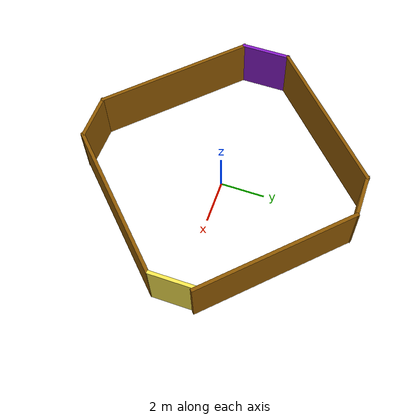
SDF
<?xml version='1.0'?>
<sdf version='1.7'>
  <model name='Arena'>
    <pose>0.041118 0.057895 0 0 -0 0</pose>
    <link name='Wall_0'>
      <collision name='Wall_0_Collision'>
        <geometry>
          <box>
            <size>2.26 0.15 2.5</size>
          </box>
        </geometry>
        <pose>0 0 1.25 0 -0 0</pose>
      </collision>
      <visual name='Wall_0_Visual'>
        <pose>0 0 1.25 0 -0 0</pose>
        <geometry>
          <box>
            <size>2.26 0.15 2.5</size>
          </box>
        </geometry>
        <material>
          <script>
            <uri>file://media/materials/scripts/gazebo.material</uri>
            <name>Gazebo/Grey</name>
          </script>
          <ambient>0.533333 0.109804 0.792157 1</ambient>
        </material>
        <meta>
          <layer>0</layer>
        </meta>
      </visual>
      <pose>-6.08112 0.057105 0 0 -0 1.5708</pose>
    </link>
    <link name='Wall_10'>
      <collision name='Wall_10_Collision'>
        <geometry>
          <box>
            <size>2 0.15 2.5</size>
          </box>
        </geometry>
        <pose>0 0 1.25 0 -0 0</pose>
      </collision>
      <visual name='Wall_10_Visual'>
        <pose>0 0 1.25 0 -0 0</pose>
        <geometry>
          <box>
            <size>2 0.15 2.5</size>
          </box>
        </geometry>
        <material>
          <script>
            <uri>file://media/materials/scripts/gazebo.material</uri>
            <name>Gazebo/Grey</name>
          </script>
          <ambient>0.988235 0.913725 0.309804 1</ambient>
        </material>
        <meta>
          <layer>0</layer>
        </meta>
      </visual>
      <pose>5.95354 -0.054343 0 0 -0 -1.5708</pose>
    </link>
    <link name='Wall_12'>
      <collision name='Wall_12_Collision'>
        <geometry>
          <box>
            <size>7.5 0.15 2.5</size>
          </box>
        </geometry>
        <pose>0 0 1.25 0 -0 0</pose>
      </collision>
      <visual name='Wall_12_Visual'>
        <pose>0 0 1.25 0 -0 0</pose>
        <geometry>
          <box>
            <size>7.5 0.15 2.5</size>
          </box>
        </geometry>
        <material>
          <script>
            <uri>file://media/materials/scripts/gazebo.material</uri>
            <name>Gazebo/Grey</name>
          </script>
          <ambient>0.560784 0.34902 0.00784314 1</ambient>
        </material>
        <meta>
          <layer>0</layer>
        </meta>
      </visual>
      <pose>3.4825 3.47549 0 0 -0 -0.785398</pose>
    </link>
    <link name='Wall_14'>
      <collision name='Wall_14_Collision'>
        <geometry>
          <box>
            <size>7.25 0.15 2.5</size>
          </box>
        </geometry>
        <pose>0 0 1.25 0 -0 0</pose>
      </collision>
      <visual name='Wall_14_Visual'>
        <pose>0 0 1.25 0 -0 0</pose>
        <geometry>
          <box>
            <size>7.25 0.15 2.5</size>
          </box>
        </geometry>
        <material>
          <script>
            <uri>file://media/materials/scripts/gazebo.material</uri>
            <name>Gazebo/Grey</name>
          </script>
          <ambient>0.560784 0.34902 0.00784314 1</ambient>
        </material>
        <meta>
          <layer>0</layer>
        </meta>
      </visual>
      <pose>3.43107 -3.56388 0 0 -0 0.785398</pose>
    </link>
    <link name='Wall_2'>
      <collision name='Wall_2_Collision'>
        <geometry>
          <box>
            <size>7.23587 0.15 2.5</size>
          </box>
        </geometry>
        <pose>0 0 1.25 0 -0 0</pose>
      </collision>
      <visual name='Wall_2_Visual'>
        <pose>0 0 1.25 0 -0 0</pose>
        <geometry>
          <box>
            <size>7.23587 0.15 2.5</size>
          </box>
        </geometry>
        <material>
          <script>
            <uri>file://media/materials/scripts/gazebo.material</uri>
            <name>Gazebo/Grey</name>
          </script>
          <ambient>0.560784 0.34902 0.00784314 1</ambient>
        </material>
        <meta>
          <layer>0</layer>
        </meta>
      </visual>
      <pose>-3.57089 -3.49812 0 0 -0 -0.783402</pose>
    </link>
    <link name='Wall_4'>
      <collision name='Wall_4_Collision'>
        <geometry>
          <box>
            <size>2.14504 0.15 2.5</size>
          </box>
        </geometry>
        <pose>0 0 1.25 0 -0 0</pose>
      </collision>
      <visual name='Wall_4_Visual'>
        <pose>0 0 1.25 0 -0 0</pose>
        <geometry>
          <box>
            <size>2.14504 0.15 2.5</size>
          </box>
        </geometry>
        <material>
          <script>
            <uri>file://media/materials/scripts/gazebo.material</uri>
            <name>Gazebo/Grey</name>
          </script>
          <ambient>0.560784 0.34902 0.00784314 1</ambient>
        </material>
        <meta>
          <layer>0</layer>
        </meta>
      </visual>
      <pose>-0.063333 -6.02808 0 0 -0 -0.019776</pose>
    </link>
    <link name='Wall_6'>
      <collision name='Wall_6_Collision'>
        <geometry>
          <box>
            <size>7.27614 0.15 2.5</size>
          </box>
        </geometry>
        <pose>0 0 1.25 0 -0 0</pose>
      </collision>
      <visual name='Wall_6_Visual'>
        <pose>0 0 1.25 0 -0 0</pose>
        <geometry>
          <box>
            <size>7.27614 0.15 2.5</size>
          </box>
        </geometry>
        <material>
          <script>
            <uri>file://media/materials/scripts/gazebo.material</uri>
            <name>Gazebo/Grey</name>
          </script>
          <ambient>0.560784 0.34902 0.00784314 1</ambient>
        </material>
        <meta>
          <layer>0</layer>
        </meta>
      </visual>
      <pose>-3.51862 3.58811 0 0 -0 0.768232</pose>
    </link>
    <link name='Wall_8'>
      <collision name='Wall_8_Collision'>
        <geometry>
          <box>
            <size>2 0.15 2.5</size>
          </box>
        </geometry>
        <pose>0 0 1.25 0 -0 0</pose>
      </collision>
      <visual name='Wall_8_Visual'>
        <pose>0 0 1.25 0 -0 0</pose>
        <geometry>
          <box>
            <size>2 0.15 2.5</size>
          </box>
        </geometry>
        <material>
          <script>
            <uri>file://media/materials/scripts/gazebo.material</uri>
            <name>Gazebo/Grey</name>
          </script>
          <ambient>0.560784 0.34902 0.00784314 1</ambient>
        </material>
        <meta>
          <layer>0</layer>
        </meta>
      </visual>
      <pose>-0.041118 6.07411 0 0 -0 0</pose>
    </link>
    <static>1</static>
  </model>
</sdf>
